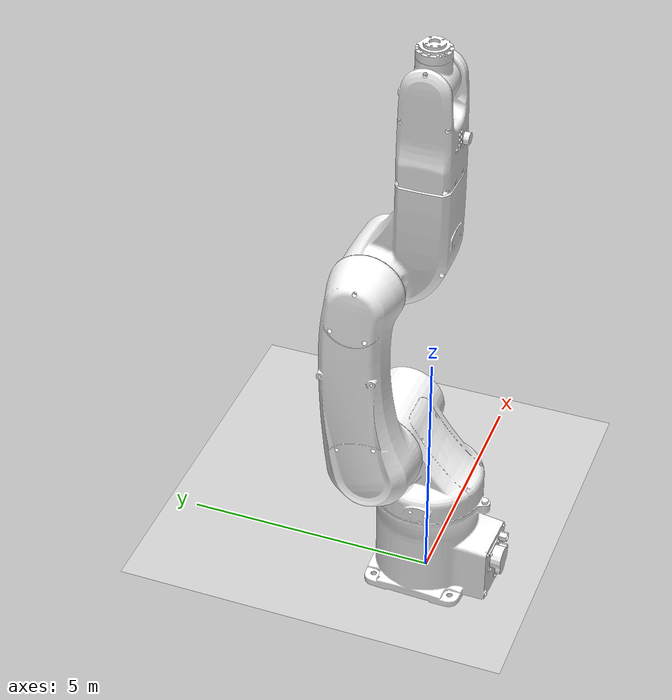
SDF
<?xml version="1.0" ?>
<sdf version="1.7">
    <world name="car_world">
        <physics name="1ms" type="ignored">
            <max_step_size>0.001</max_step_size>
            <real_time_factor>1.0</real_time_factor>
        </physics>
        <plugin
            filename="gz-sim-physics-system"
            name="gz::sim::systems::Physics">
        </plugin>
        <plugin
            filename="gz-sim-user-commands-system"
            name="gz::sim::systems::UserCommands">
        </plugin>
        <plugin
            filename="gz-sim-scene-broadcaster-system"
            name="gz::sim::systems::SceneBroadcaster">
        </plugin>

        <light type="directional" name="sun">
            <cast_shadows>true</cast_shadows>
            <pose>0 0 10 0 0 0</pose>
            <diffuse>0.8 0.8 0.8 1</diffuse>
            <specular>0.2 0.2 0.2 1</specular>
            <attenuation>
                <range>1000</range>
                <constant>0.9</constant>
                <linear>0.01</linear>
                <quadratic>0.001</quadratic>
            </attenuation>
            <direction>-0.5 0.1 -0.9</direction>
        </light>

        <model name="ground_plane">
            <static>true</static>
            <link name="link">
                <collision name="collision">
                <geometry>
                    <plane>
                    <normal>0 0 1</normal>
                    </plane>
                </geometry>
                </collision>
                <visual name="visual">
                <geometry>
                    <plane>
                    <normal>0 0 1</normal>
                    <size>100 100</size>
                    </plane>
                </geometry>
                <material>
                    <ambient>0.8 0.8 0.8 1</ambient>
                    <diffuse>0.8 0.8 0.8 1</diffuse>
                    <specular>0.8 0.8 0.8 1</specular>
                </material>
                </visual>
            </link>
        </model>
        <model name='arctos robot' canonical_link='chassis'>
            <pose relative_to='world'>0 0 0 0 0 0</pose>
            <link name='chassis'>
                <pose relative_to='__model__'>0 0 0 0 0 0</pose>
                <inertial> <!--inertial properties of the link mass, inertia matix-->
                    <mass>1.14395</mass>
                    <inertia>
                        <ixx>0.095329</ixx>
                        <ixy>0</ixy>
                        <ixz>0</ixz>
                        <iyy>0.381317</iyy>
                        <iyz>0</iyz>
                        <izz>0.476646</izz>
                    </inertia>robot
                </inertial>
                <visual name='visual'>
                    <geometry>
                        <mesh>
                            <uri>file:///home/nguyen/ros2_ws/src/ros2_arctos_HCMUT/arctos_description/meshes/base_link.dae</uri>
                        </mesh>
                    </geometry>
                    <!--let's add color to our link-->
                    <material>
                        <ambient>1 1 1 1</ambient>
                        <diffuse>1 1 1 1</diffuse>
                        <specular>0.1 0.1 0.1 1</specular>
                    </material>
                </visual>
                <collision name='collision'>
                    <geometry>
                        <box>
                            <size>2.0 1.0 0.5</size>
                        </box>
                    </geometry>
                </collision>
            </link>
            <link name='link_1'>
                <pose relative_to='__model__'>0 0 0 0 0 0</pose>
                <inertial>
                    <mass>1</mass>
                    <inertia>
                        <ixx>0.043333</ixx>
                        <ixy>0</ixy>
                        <ixz>0</ixz>
                        <iyy>0.043333</iyy>
                        <iyz>0</iyz>
                        <izz>0.08</izz>
                    </inertia>
                </inertial>
                <visual name='visual'>
                    <geometry>
                        <mesh>
                            <uri>file:///home/nguyen/ros2_ws/src/ros2_arctos_HCMUT/arctos_description/meshes/link_1.dae</uri>
                        </mesh>
                    </geometry>
                    <material>
                        <ambient>1 1 1 1</ambient>
                        <diffuse>1 1 1 1</diffuse>
                        <specular>0.1 0.1 0.1 1</specular>
                    </material>
                </visual>
                <collision name='collision'>
                    <geometry>
                        <cylinder>
                            <radius>0.4</radius>
                            <length>0.2</length>
                        </cylinder>
                    </geometry>
                </collision>
            </link>
            <link name='link_2'>
                <pose relative_to='__model__'>0 0 0 0 0 0</pose>
                <inertial>
                    <mass>1</mass>
                    <inertia>
                        <ixx>0.043333</ixx>
                        <ixy>0</ixy>
                        <ixz>0</ixz>
                        <iyy>0.043333</iyy>
                        <iyz>0</iyz>
                        <izz>0.08</izz>
                    </inertia>
                </inertial>
                <visual name='visual'>
                    <geometry>
                        <mesh>
                            <uri>file:///home/nguyen/ros2_ws/src/ros2_arctos_HCMUT/arctos_description/meshes/link_2.dae</uri>
                        </mesh>
                    </geometry>
                    <material>
                        <ambient>1 1 1 1</ambient>
                        <diffuse>1 1 1 1</diffuse>
                        <specular>0.1 0.1 0.1 1</specular>
                    </material>
                </visual>
                <collision name='collision'>
                    <geometry>
                        <cylinder>
                            <radius>0.4</radius>
                            <length>0.2</length>
                        </cylinder>
                    </geometry>
                </collision>
            </link>
            <link name='link_3'>
                <pose relative_to='__model__'>0 0 0 0 0 0</pose>
                <inertial>
                    <mass>1</mass>
                    <inertia>
                        <ixx>0.043333</ixx>
                        <ixy>0</ixy>
                        <ixz>0</ixz>
                        <iyy>0.043333</iyy>
                        <iyz>0</iyz>
                        <izz>0.08</izz>
                    </inertia>
                </inertial>
                <visual name='visual'>
                    <geometry>
                        <mesh>
                            <uri>file:///home/nguyen/ros2_ws/src/ros2_arctos_HCMUT/arctos_description/meshes/link_3.dae</uri>
                        </mesh>
                    </geometry>
                    <material>
                        <ambient>1 1 1 1</ambient>
                        <diffuse>1 1 1 1</diffuse>
                        <specular>0.1 0.1 0.1 1</specular>
                    </material>
                </visual>
                <collision name='collision'>
                    <geometry>
                        <cylinder>
                            <radius>0.4</radius>
                            <length>0.2</length>
                        </cylinder>
                    </geometry>
                </collision>
            </link>
            <link name='link_4'>
                <pose relative_to='__model__'>0 0 0 0 0 0</pose>
                <inertial>
                    <mass>1</mass>
                    <inertia>
                        <ixx>0.043333</ixx>
                        <ixy>0</ixy>
                        <ixz>0</ixz>
                        <iyy>0.043333</iyy>
                        <iyz>0</iyz>
                        <izz>0.08</izz>
                    </inertia>
                </inertial>
                <visual name='visual'>
                    <geometry>
                        <mesh>
                            <uri>file:///home/nguyen/ros2_ws/src/ros2_arctos_HCMUT/arctos_description/meshes/link_4.dae</uri>
                        </mesh>
                    </geometry>
                    <material>
                        <ambient>1 1 1 1</ambient>
                        <diffuse>1 1 1 1</diffuse>
                        <specular>0.1 0.1 0.1 1</specular>
                    </material>
                </visual>
                <collision name='collision'>
                    <geometry>
                        <cylinder>
                            <radius>0.4</radius>
                            <length>0.2</length>
                        </cylinder>
                    </geometry>
                </collision>
            </link>
            <link name='link_5'>
                <pose relative_to='__model__'>0 0 0 0 0 0</pose>
                <inertial>
                    <mass>1</mass>
                    <inertia>
                        <ixx>0.043333</ixx>
                        <ixy>0</ixy>
                        <ixz>0</ixz>
                        <iyy>0.043333</iyy>
                        <iyz>0</iyz>
                        <izz>0.08</izz>
                    </inertia>
                </inertial>
                <visual name='visual'>
                    <geometry>
                        <mesh>
                            <uri>file:///home/nguyen/ros2_ws/src/ros2_arctos_HCMUT/arctos_description/meshes/link_5.dae</uri>
                        </mesh>
                    </geometry>
                    <material>
                        <ambient>1 1 1 1</ambient>
                        <diffuse>1 1 1 1</diffuse>
                        <specular>0.1 0.1 0.1 1</specular>
                    </material>
                </visual>
                <collision name='collision'>
                    <geometry>
                        <cylinder>
                            <radius>0.4</radius>
                            <length>0.2</length>
                        </cylinder>
                    </geometry>
                </collision>
            </link>
            <link name='link_6'>
                <pose relative_to='__model__'>0 0 0 0 0 0</pose>
                <inertial>
                    <mass>1</mass>
                    <inertia>
                        <ixx>0.043333</ixx>
                        <ixy>0</ixy>
                        <ixz>0</ixz>
                        <iyy>0.043333</iyy>
                        <iyz>0</iyz>
                        <izz>0.08</izz>
                    </inertia>
                </inertial>
                <visual name='visual'>
                    <geometry>
                        <mesh>
                            <uri>file:///home/nguyen/ros2_ws/src/ros2_arctos_HCMUT/arctos_description/meshes/link_6.dae</uri>
                        </mesh>
                    </geometry>
                    <material>
                        <ambient>1 1 1 1</ambient>
                        <diffuse>1 1 1 1</diffuse>
                        <specular>0.1 0.1 0.1 1</specular>
                    </material>
                </visual>
                <collision name='collision'>
                    <geometry>
                        <cylinder>
                            <radius>0.4</radius>
                            <length>0.2</length>
                        </cylinder>
                    </geometry>
                </collision>
            </link>
            <joint name='link_1_joint' type='revolute'>
                <pose relative_to='link_1'/>
                <parent>chassis</parent>
                <child>link_1</child>
                <axis>
                    <xyz expressed_in='__model__'>0 1 0</xyz> <!--can be defined as any frame or even arbitrary frames-->
                    <limit>
                        <lower>-1.79769e+308</lower>    <!--negative infinity-->
                        <upper>1.79769e+308</upper>     <!--positive infinity-->
                    </limit>
                </axis>
            </joint>
            <joint name='link_2_joint' type='revolute'>
                <pose relative_to='link_2'/>
                <parent>link_1</parent>
                <child>link_2</child>
                <axis>
                    <xyz expressed_in='__model__'>0 1 0</xyz> <!--can be defined as any frame or even arbitrary frames-->
                    <limit>
                        <lower>-1.79769e+308</lower>    <!--negative infinity-->
                        <upper>1.79769e+308</upper>     <!--positive infinity-->
                    </limit>
                </axis>
            </joint>
            <joint name='link_3_joint' type='revolute'>
                <pose relative_to='link_3'/>
                <parent>link_2</parent>
                <child>link_3</child>
                <axis>
                    <xyz expressed_in='__model__'>0 1 0</xyz> <!--can be defined as any frame or even arbitrary frames-->
                    <limit>
                        <lower>-1.79769e+308</lower>    <!--negative infinity-->
                        <upper>1.79769e+308</upper>     <!--positive infinity-->
                    </limit>
                </axis>
            </joint>
            <joint name='link_4_joint' type='revolute'>
                <pose relative_to='link_4'/>
                <parent>link_3</parent>
                <child>link_4</child>
                <axis>
                    <xyz expressed_in='__model__'>0 1 0</xyz> <!--can be defined as any frame or even arbitrary frames-->
                    <limit>
                        <lower>-1.79769e+308</lower>    <!--negative infinity-->
                        <upper>1.79769e+308</upper>     <!--positive infinity-->
                    </limit>
                </axis>
            </joint>
            <joint name='link_5_joint' type='revolute'>
                <pose relative_to='link_5'/>
                <parent>link_4</parent>
                <child>link_5</child>
                <axis>
                    <xyz expressed_in='__model__'>0 1 0</xyz> <!--can be defined as any frame or even arbitrary frames-->
                    <limit>
                        <lower>-1.79769e+308</lower>    <!--negative infinity-->
                        <upper>1.79769e+308</upper>     <!--positive infinity-->
                    </limit>
                </axis>
            </joint>
            <joint name='link_6_joint' type='revolute'>
                <pose relative_to='link_6'/>
                <parent>link_5</parent>
                <child>link_6</child>
                <axis>
                    <xyz expressed_in='__model__'>0 1 0</xyz> <!--can be defined as any frame or even arbitrary frames-->
                    <limit>
                        <lower>-1.79769e+308</lower>    <!--negative infinity-->
                        <upper>1.79769e+308</upper>     <!--positive infinity-->
                    </limit>
                </axis>
            </joint>
            <plugin
                filename="gz-sim-joint-position-controller-system"
                name="gz::sim::systems::JointPositionController">
                <joint_name>link_1_joint</joint_name>
                <topic>/link_1_joint/position</topic>
            </plugin>
        </model>
    </world>
</sdf>
